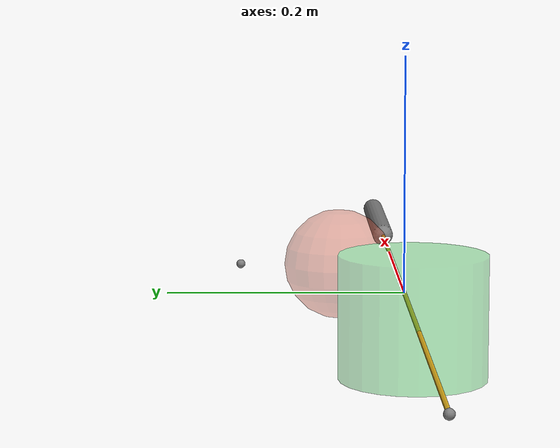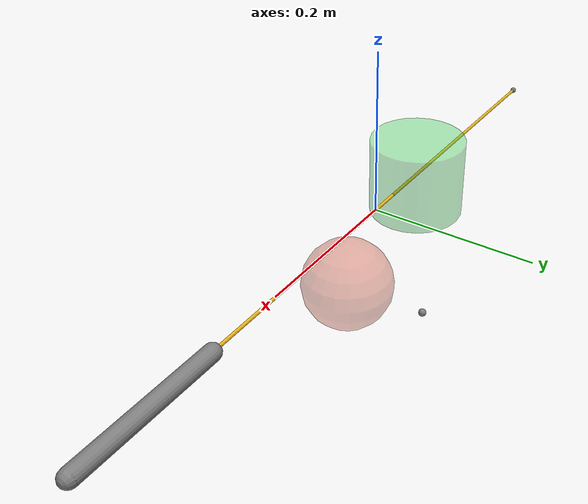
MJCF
<mujoco model="wrap_arm">
  <compiler angle="radian"/>
  <option gravity="0 0 0"/>

  <worldbody>
    <site name="anchor" pos="-0.40 0.00 0.00" size="0.004"/>

    <geom name="pulley" type="cylinder" size="0.06 0.05" pos="-0.10 0.00 0.00"
          contype="0" conaffinity="0" rgba="0.2 0.8 0.3 0.4"/>

    <geom name="ball" type="sphere" size="0.05" pos="0.14 0.05 0.00"
          contype="0" conaffinity="0" rgba="0.8 0.3 0.2 0.4"/>
    <site name="ball_side" pos="0.14 0.14 0.00" size="0.004"/>

    <body name="arm" pos="0.30 0.00 0.00">
      <joint name="hinge" type="hinge" axis="0 0 1" pos="0 0 0"
             limited="false" damping="0.01"/>
      <geom name="arm_g" type="capsule" fromto="0 0 0 0.18 0 0" size="0.01"
            contype="0" conaffinity="0"/>
      <site name="tip" pos="0.18 0.00 0.00" size="0.004"/>
    </body>
  </worldbody>

  <tendon>
    <spatial name="t_cyl" width="0.002" rgba="0.9 0.7 0.1 1">
      <site site="anchor"/>
      <geom geom="pulley"/>
      <site site="tip"/>
    </spatial>
    <spatial name="t_sph" width="0.002" rgba="0.1 0.7 0.9 1">
      <site site="anchor"/>
      <geom geom="ball" sidesite="ball_side"/>
      <site site="tip"/>
    </spatial>
  </tendon>
</mujoco>
